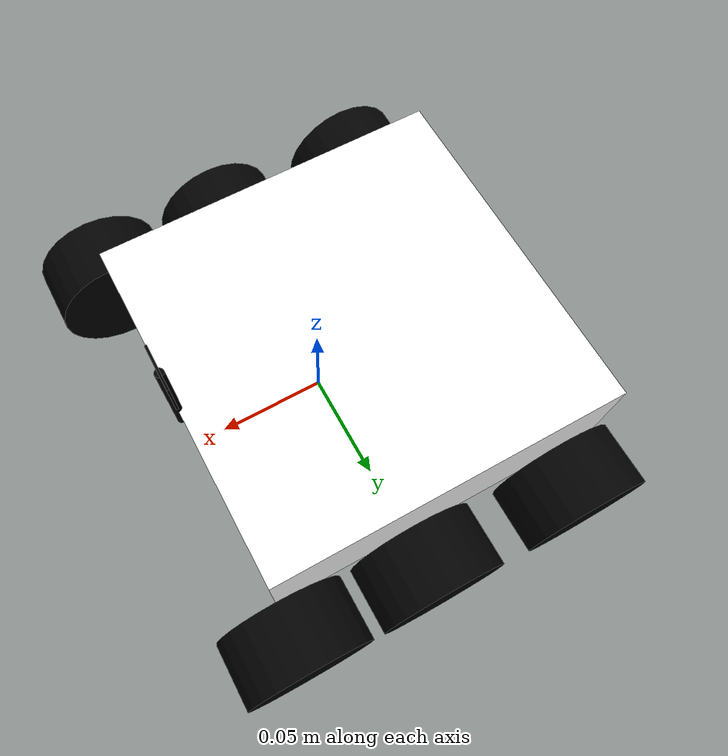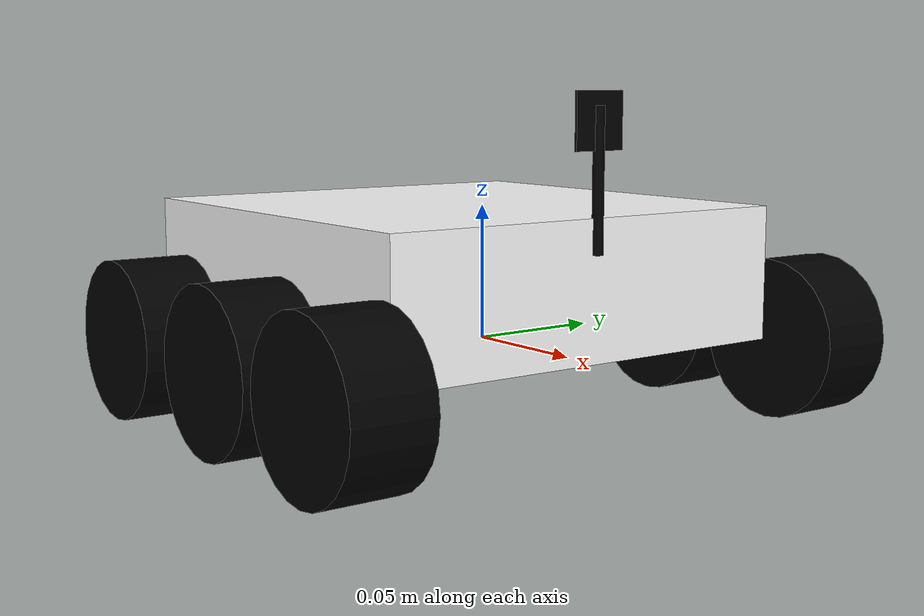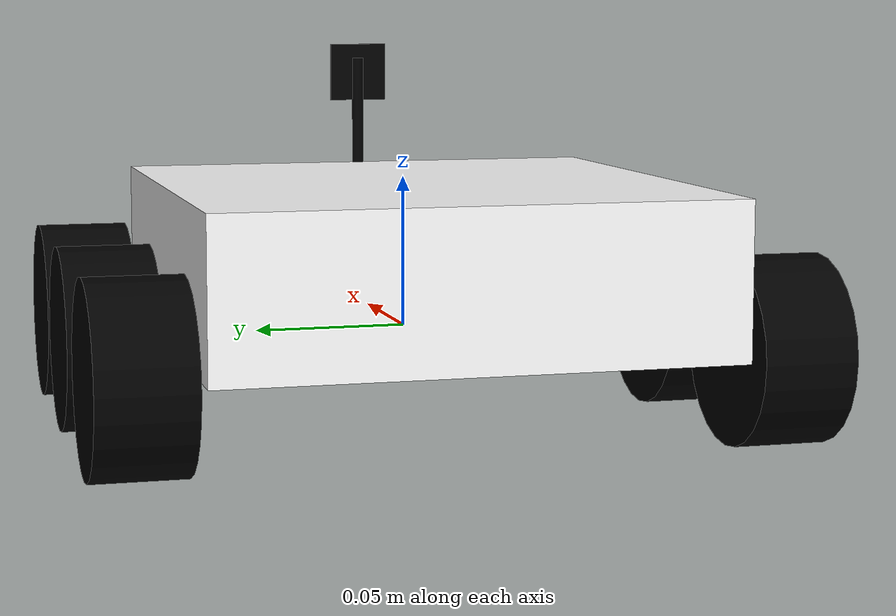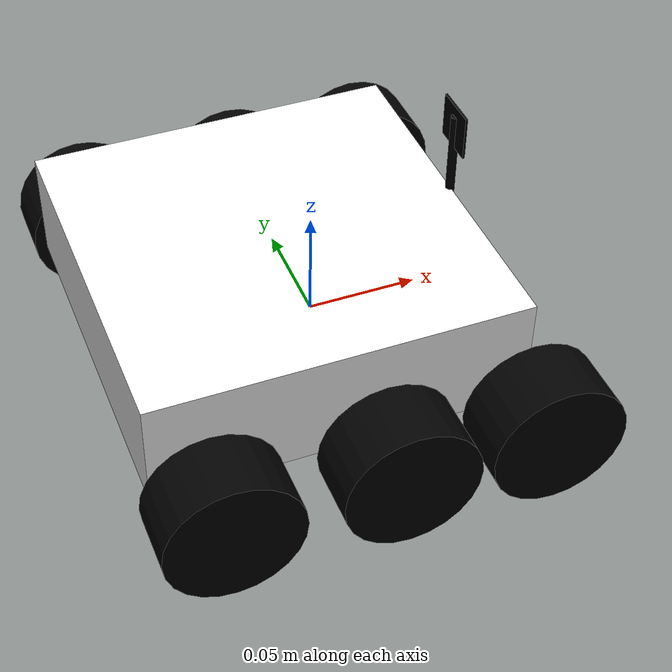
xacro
<?xml version="1.0"?>
<robot xmlns:xacro="http://www.ros.org/wiki/xacro"  name="robot">

    <xacro:include filename="robot_core.xacro" />

    <xacro:include filename="ros2_control.xacro" />
    <xacro:include filename="camera.xacro" />

</robot>

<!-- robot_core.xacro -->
<robot xmlns:xacro="http://www.ros.org/wiki/xacro"  >

    <xacro:include filename="inertial_macros.xacro"/>

<!--MATERIALS-->

    <material name="white">
        <color rgba="1 1 1 1" />
    </material>

    <material name="orange">
        <color rgba="1 0.3 0.1 1" />
    </material>

    <material name="blue">
        <color rgba="0.2 0.2 1 1" />
    </material>

    <material name="black">
        <color rgba="0 0 0 1" />
    </material>

<!--BASE LINK-->

    <link name="base_link">
    </link>

<!--CHASSIS LINK-->

    <joint name="chassis_joint" type="fixed">
        <parent link="base_link"/>
        <child link="chassis"/>
        <origin xyz="-0.1 0 0"/>
    </joint>

    <link name="chassis">
        <visual>
            <origin xyz="0.0825 0 0.025" rpy="0 0 0"/>
            <geometry>
                <box size="0.165 0.165 0.05"/>
            </geometry>
            <material name="white"/>
        </visual>
        <collision>
            <origin xyz="0.0825 0 0.025" rpy="0 0 0"/>
            <geometry>
                <box size="0.165 0.165 0.05"/>
            </geometry>
            <material name="white"/>
        </collision>
        <xacro:inertial_box mass="0.5" x="0.3" y="0.3" z="0.15">
            <origin xyz="0.0825 0 0.025" rpy="0 0 0"/>
        </xacro:inertial_box>
    </link>

    <gazebo reference="chassis">
        <material>Gazebo/White</material>
    </gazebo>

<!--BACK LEFT WHEEL LINK-->

    <joint name ="back_left_wheel_joint" type="continuous">
        <parent link="base_link"/>
        <child link="back_left_wheel"/>
        <origin xyz="0.065 0.100 0" rpy="-${pi/2} 0 0"/>
        <axis xyz="0 0 1"/>
    </joint>

    <link name="back_left_wheel">
        <visual>
            <geometry>
                <cylinder length="0.03" radius="0.03"/>
            </geometry>
            <material name="black"/>
        </visual>
        <collision>
            <geometry>
                <cylinder length="0.030" radius="0.030"/>
            </geometry>
            <material name="black"/>
        </collision>
        <xacro:inertial_cylinder mass="0.1" length="0.03" radius="0.03">
            <origin xyz="0 0 0" rpy="0 0 0"/>
        </xacro:inertial_cylinder>
    </link>

    <gazebo reference="back_left_wheel">
        <material>Gazebo/Black</material>
    </gazebo>

<!--BACK RIGHT WHEEL LINK-->

    <joint name ="back_right_wheel_joint" type="continuous">
        <parent link="base_link"/>
        <child link="back_right_wheel"/>
        <origin xyz="0.065 -0.100 0" rpy="${pi/2} 0 0"/>
        <axis xyz="0 0 -1"/>
    </joint>

    <link name="back_right_wheel">
        <visual>
            <geometry>
                <cylinder length="0.030" radius="0.030"/>
            </geometry>
            <material name ="black"/>
        </visual>
        <collision>
            <geometry>
                <cylinder length="0.030" radius="0.030"/>
            </geometry>
            <material name ="black"/>
        </collision>
        <xacro:inertial_cylinder mass="0.1" length="0.03" radius="0.03">
            <origin xyz="0 0 0" rpy="0 0 0"/>
        </xacro:inertial_cylinder>
    </link>

    <gazebo reference="back_right_wheel">
        <material>Gazebo/Black</material>
    </gazebo>

<!--FRONT LEFT WHEEL LINK-->

    <joint name ="front_left_wheel_joint" type="fixed">
        <parent link="base_link"/>
        <child link="front_left_wheel"/>
        <origin xyz="-0.075 0.100 0" rpy="-${pi/2} 0 0"/>
        <axis xyz="0 0 1"/>
    </joint>

    <link name="front_left_wheel">
        <visual>
            <geometry>
                <cylinder length="0.03" radius="0.03"/>
            </geometry>
            <material name="black"/>
        </visual>
        <collision>
            <geometry>
                <cylinder length="0.030" radius="0.030"/>
            </geometry>
            <material name="black"/>
        </collision>
        <xacro:inertial_cylinder mass="0.1" length="0.03" radius="0.03">
            <origin xyz="0 0 0" rpy="0 0 0"/>
        </xacro:inertial_cylinder>
    </link>

    <gazebo reference="front_left_wheel">
        <material>Gazebo/Black</material>
        <mu1 value="0.001"/>
        <mu2 value="0.001"/>
    </gazebo>

<!--FRONT RIGHT WHEEL LINK-->

    <joint name ="front_right_wheel_joint" type="fixed">
        <parent link="base_link"/>
        <child link="front_right_wheel"/>
        <origin xyz="-0.075 -0.100 0" rpy="${pi/2} 0 0"/>
        <axis xyz="0 0 -1"/>
    </joint>

    <link name="front_right_wheel">
        <visual>
            <geometry>
                <cylinder length="0.030" radius="0.030"/>
            </geometry>
            <material name ="black"/>
        </visual>
        <collision>
            <geometry>
                <cylinder length="0.030" radius="0.030"/>
            </geometry>
            <material name ="black"/>
        </collision>
        <xacro:inertial_cylinder mass="0.1" length="0.03" radius="0.03">
            <origin xyz="0 0 0" rpy="0 0 0"/>
        </xacro:inertial_cylinder>
    </link>

    <gazebo reference="front_right_wheel">
        <material>Gazebo/Black</material>
        <mu1 value="0.001"/>
        <mu2 value="0.001"/>
    </gazebo>

<!--MIDDLE LEFT WHEEL LINK-->

    <joint name ="middle_left_wheel_joint" type="fixed">
        <parent link="base_link"/>
        <child link="middle_left_wheel"/>
        <origin xyz="0 0.100 0" rpy="-${pi/2} 0 0"/>
        <axis xyz="0 0 1"/>
    </joint>

    <link name="middle_left_wheel">
        <visual>
            <geometry>
                <cylinder length="0.03" radius="0.03"/>
            </geometry>
            <material name="black"/>
        </visual>
        <collision>
            <geometry>
                <cylinder length="0.030" radius="0.030"/>
            </geometry>
            <material name="black"/>
        </collision>
        <xacro:inertial_cylinder mass="0.1" length="0.03" radius="0.03">
            <origin xyz="0 0 0" rpy="0 0 0"/>
        </xacro:inertial_cylinder>
    </link>

    <gazebo reference="middle_left_wheel">
        <material>Gazebo/Black</material>
        <mu1 value="0.001"/>
        <mu2 value="0.001"/>
    </gazebo>

<!--MIDDLE RIGHT WHEEL LINK-->

    <joint name ="middle_right_wheel_joint" type="fixed">
        <parent link="base_link"/>
        <child link="middle_right_wheel"/>
        <origin xyz="0 -0.100 0" rpy="${pi/2} 0 0"/>
        <axis xyz="0 0 -1"/>
    </joint>

    <link name="middle_right_wheel">
        <visual>
            <geometry>
                <cylinder length="0.030" radius="0.030"/>
            </geometry>
            <material name ="black"/>
        </visual>
        <collision>
            <geometry>
                <cylinder length="0.030" radius="0.030"/>
            </geometry>
            <material name ="black"/>
        </collision>
        <xacro:inertial_cylinder mass="0.1" length="0.03" radius="0.03">
            <origin xyz="0 0 0" rpy="0 0 0"/>
        </xacro:inertial_cylinder>
    </link>

    <gazebo reference="middle_right_wheel">
        <material>Gazebo/Black</material>
        <mu1 value="0.001"/>
        <mu2 value="0.001"/>
    </gazebo>

</robot>

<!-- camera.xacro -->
<robot xmlns:xacro="http://www.ros.org/wiki/xacro" >

    <joint name="camera_joint" type="fixed">
        <parent link="chassis"/>
        <child link="camera_link"/>
        <origin xyz="0.165 0 0.0825" rpy="0 0 0"/>
    </joint>

    <link name="camera_link">
        <visual>
            <geometry>
                <box size="0.001 0.02 0.02"/>
            </geometry>
            <material name="black"/>
        </visual>
        <visual>
            <origin xyz="0 0 -0.02"/>
            <geometry>
                <cylinder radius="0.002" length="0.05"/>
            </geometry>
            <material name="black"/>
        </visual>
    </link>

    <joint name="camera_optical_joint" type="fixed">
        <parent link="camera_link"/>
        <child link="camera_link_optical"/>
        <origin xyz="0 0 0" rpy="0 0 0"/>
    </joint>

    <link name="camera_link_optical"></link>

    <gazebo reference="camera_link">
        <material>Gazebo/Black</material>

        <sensor name="camera" type="camera">
            <pose> 0 0 0 0 0 0 </pose>
            <visualize>true</visualize>
            <update_rate>10</update_rate>
            <camera>
                <horizontal_fov>1.089</horizontal_fov>
                <image>
                    <format>R8G8B8</format>
                    <width>640</width>
                    <height>480</height>
                </image>
                <clip>
                    <near>0.05</near>
                    <far>8.0</far>
                </clip>
            </camera>
            <plugin name="camera_controller" filename="libgazebo_ros_camera.so">
                <frame_name>camera_link_optical</frame_name>
            </plugin>
        </sensor>
    </gazebo>

</robot>
